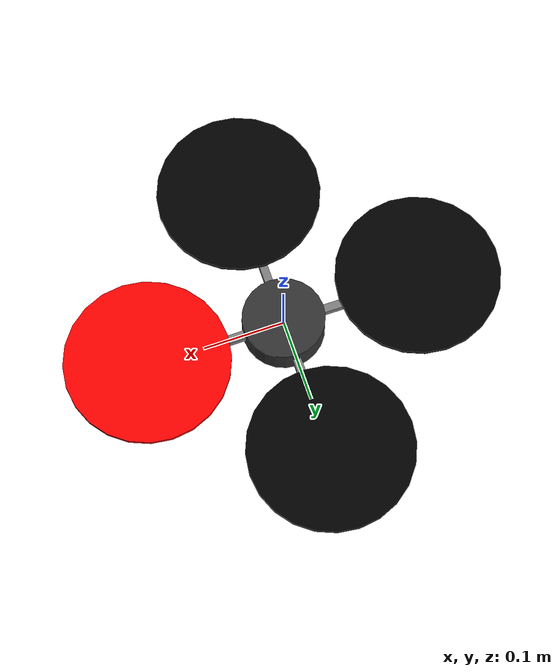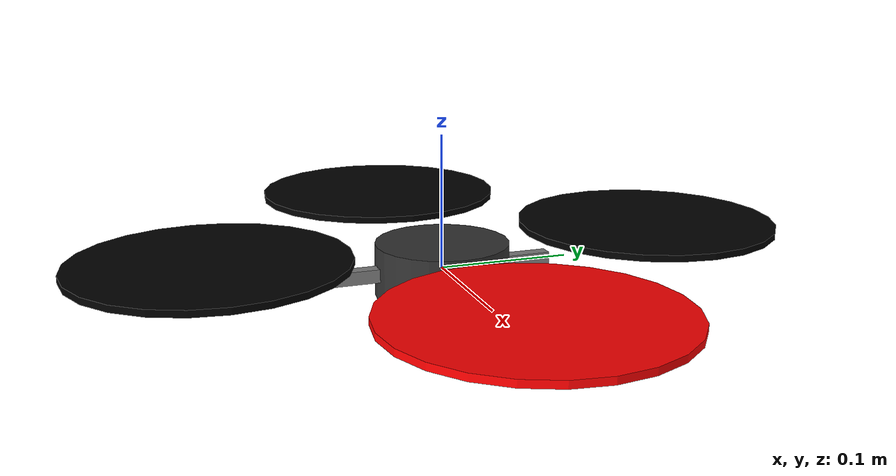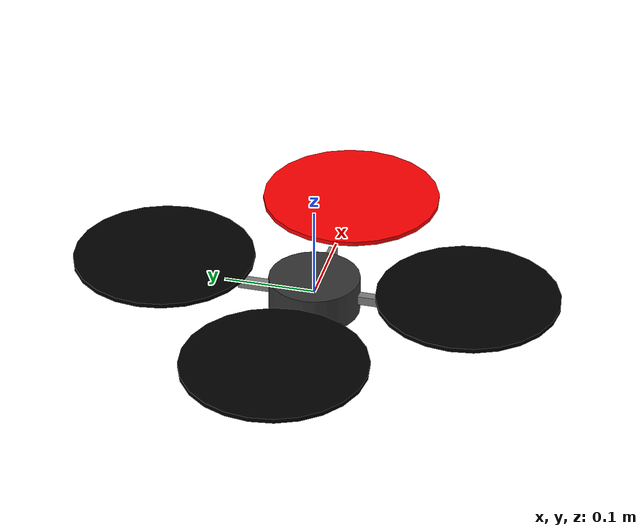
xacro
<?xml version="1.0"?>
<robot xmlns:xacro="http://www.ros.org/wiki/xacro" name="hummingbird">

  <!-- ============ Parameters ============ -->
  <xacro:property name="mass"        value="0.716"/>     <!-- kg -->
  <xacro:property name="body_radius" value="0.05"/>
  <xacro:property name="body_height" value="0.04"/>
  <xacro:property name="arm_length"  value="0.17"/>
  <xacro:property name="rotor_mass"  value="0.005"/>
  <xacro:property name="rotor_radius" value="0.1"/>

  <!-- Body moments of inertia (kg*m^2) -->
  <xacro:property name="Ixx" value="0.007"/>
  <xacro:property name="Iyy" value="0.007"/>
  <xacro:property name="Izz" value="0.012"/>

  <!-- ============ Base link ============ -->
  <link name="base_link">
    <inertial>
      <mass value="${mass}"/>
      <origin xyz="0 0 0"/>
      <inertia ixx="${Ixx}" ixy="0" ixz="0"
               iyy="${Iyy}" iyz="0" izz="${Izz}"/>
    </inertial>
    <visual>
      <geometry>
        <cylinder radius="${body_radius}" length="${body_height}"/>
      </geometry>
      <material name="dark_grey">
        <color rgba="0.2 0.2 0.2 1.0"/>
      </material>
    </visual>
    <collision>
      <geometry>
        <cylinder radius="${body_radius}" length="${body_height}"/>
      </geometry>
    </collision>
  </link>

  <!-- ============ Arms (visual only) ============ -->
  <xacro:macro name="arm" params="name xyz rpy">
    <link name="${name}">
      <inertial>
        <mass value="0.005"/>
        <inertia ixx="1e-6" ixy="0" ixz="0" iyy="1e-6" iyz="0" izz="1e-6"/>
      </inertial>
      <visual>
        <geometry>
          <box size="${arm_length} 0.01 0.01"/>
        </geometry>
        <material name="grey">
          <color rgba="0.5 0.5 0.5 1.0"/>
        </material>
      </visual>
    </link>
    <joint name="${name}_joint" type="fixed">
      <parent link="base_link"/>
      <child link="${name}"/>
      <origin xyz="${xyz}" rpy="${rpy}"/>
    </joint>
  </xacro:macro>

  <xacro:arm name="arm_fb" xyz="0 0 0" rpy="0 0 0"/>
  <xacro:arm name="arm_lr" xyz="0 0 0" rpy="0 0 1.5708"/>

  <!-- ============ Rotor macro ============ -->
  <!-- color: visual disc color; xyz: position relative to base_link -->
  <xacro:macro name="rotor" params="number xyz color">
    <link name="rotor_${number}">
      <inertial>
        <mass value="${rotor_mass}"/>
        <inertia ixx="1e-5" ixy="0" ixz="0"
                 iyy="1e-5" iyz="0" izz="2e-5"/>
      </inertial>
      <visual>
        <geometry>
          <cylinder radius="${rotor_radius}" length="0.005"/>
        </geometry>
        <material name="rotor_${number}_color">
          <color rgba="${color}"/>
        </material>
      </visual>
      <collision>
        <geometry>
          <cylinder radius="${rotor_radius}" length="0.005"/>
        </geometry>
      </collision>
    </link>
    <joint name="rotor_${number}_joint" type="fixed">
      <parent link="base_link"/>
      <child link="rotor_${number}"/>
      <origin xyz="${xyz}" rpy="0 0 0"/>
    </joint>
  </xacro:macro>

  <!-- Front rotor red so orientation is visible in Gazebo -->
  <xacro:rotor number="0" xyz=" ${arm_length}  0           0.02" color="1 0 0 1"/>
  <xacro:rotor number="1" xyz=" 0            ${arm_length} 0.02" color="0 0 0 1"/>
  <xacro:rotor number="2" xyz="-${arm_length}  0           0.02" color="0 0 0 1"/>
  <xacro:rotor number="3" xyz=" 0           -${arm_length} 0.02" color="0 0 0 1"/>

  <!-- ============ Gazebo plugin ============ -->
  <gazebo>
    <plugin name="ftc_motor_model" filename="libftc_motor_model.so">
      <ros>
        <namespace>/hummingbird</namespace>
      </ros>
      <robotNamespace>hummingbird</robotNamespace>
      <baseLinkName>base_link</baseLinkName>
      <rotor0LinkName>rotor_0</rotor0LinkName>
      <rotor1LinkName>rotor_1</rotor1LinkName>
      <rotor2LinkName>rotor_2</rotor2LinkName>
      <rotor3LinkName>rotor_3</rotor3LinkName>
      <rotor0Direction>1</rotor0Direction>
      <rotor1Direction>-1</rotor1Direction>
      <rotor2Direction>1</rotor2Direction>
      <rotor3Direction>-1</rotor3Direction>
      <motorConstant>8.54858e-06</motorConstant>
      <momentConstant>0.016</momentConstant>
      <maxRotVelocity>1500.0</maxRotVelocity>
      <odometryRate>200.0</odometryRate>
    </plugin>
  </gazebo>

  <!-- Material tweaks so Gazebo shows colors -->
  <gazebo reference="base_link">
    <material>Gazebo/DarkGrey</material>
  </gazebo>
  <gazebo reference="rotor_0">
    <material>Gazebo/Red</material>
  </gazebo>

  <!-- Prevent Gazebo from merging rotor links into base_link -->
  <gazebo reference="rotor_0_joint">
    <preserveFixedJoint>true</preserveFixedJoint>
  </gazebo>
  <gazebo reference="rotor_1_joint">
    <preserveFixedJoint>true</preserveFixedJoint>
  </gazebo>
  <gazebo reference="rotor_2_joint">
    <preserveFixedJoint>true</preserveFixedJoint>
  </gazebo>
  <gazebo reference="rotor_3_joint">
    <preserveFixedJoint>true</preserveFixedJoint>
  </gazebo>

</robot>
